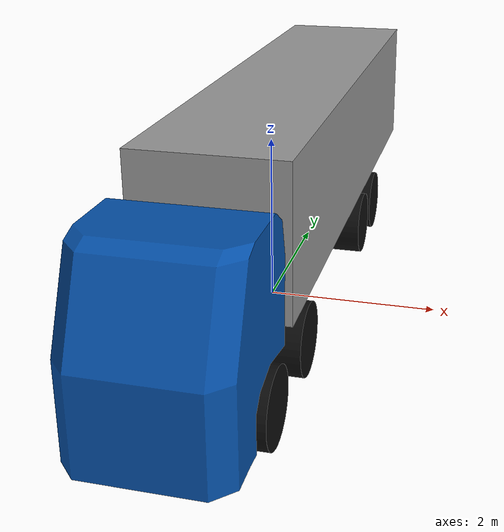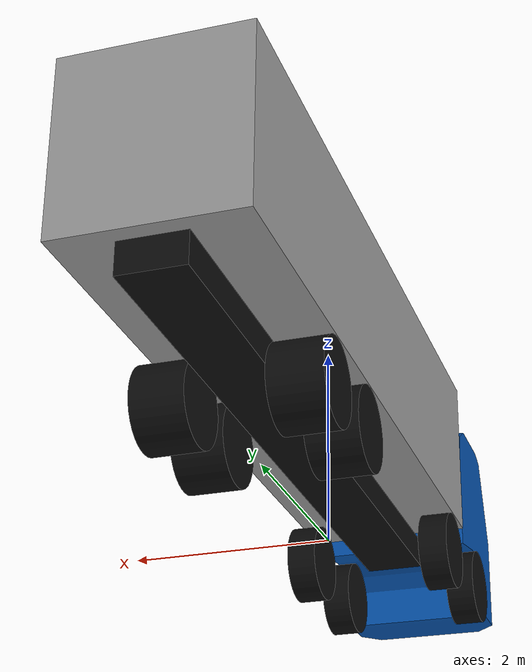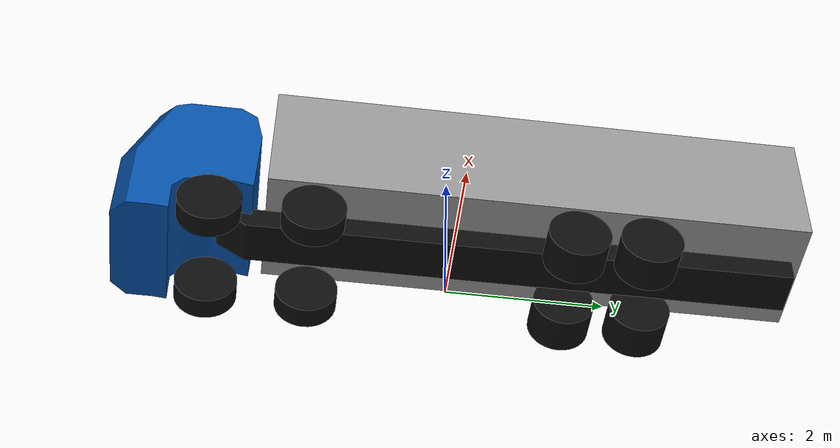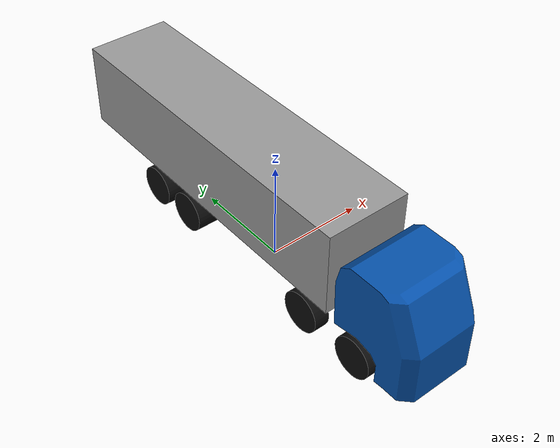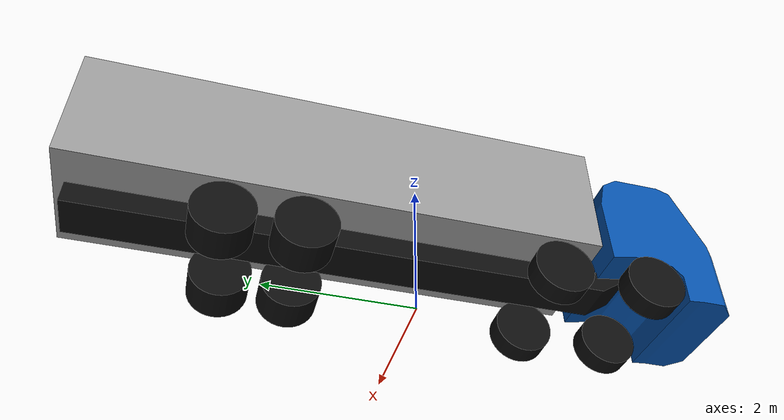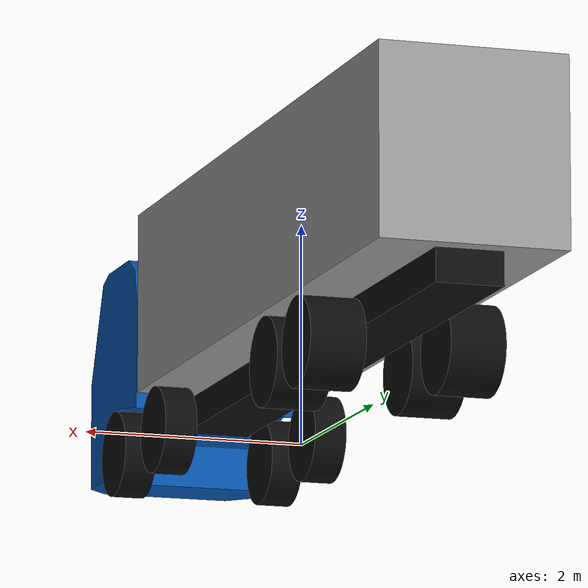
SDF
<?xml version="1.0"?>
<sdf version="1.7">
  <model name="truck">
    <static>false</static>

    <!-- Link Definition -->
    <link name="head">
      <!-- Visual Element -->
      <visual name="head_visual">
        <geometry>
          <mesh>
            <uri>model://truck/meshes/head.dae</uri>
            <scale>1 1 1</scale>
          </mesh>
        </geometry>
        <material>
          <ambient>0.02 0.32 0.67 1</ambient>
          <diffuse>0.02 0.32 0.67 1</diffuse>
          <emissive>0.1 0 0.1 1</emissive>
        </material>
      </visual>

      <!-- Collision Element -->
      <collision name="head_collision">
        <geometry>
          <mesh>
            <uri>model://truck/meshes/head.dae</uri>
            <scale>1 1 1</scale>
          </mesh>
        </geometry>
        <surface>
          <contact>
            <ode/>
          </contact>
          <bounce/>
          <friction>
            <ode/>
          </friction>
        </surface>
      </collision>

      <!-- Inertial Properties -->
      <inertial>
        <mass>10.0</mass>
        <inertia>
          <ixx>1.0</ixx>
          <ixy>0.0</ixy>
          <ixz>0.0</ixz>
          <iyy>1.0</iyy>
          <iyz>0.0</iyz>
          <izz>1.0</izz>
        </inertia>
      </inertial>
    </link>
    <link name="box">
      <!-- Visual Element -->
      <visual name="box_visual">
        <geometry>
          <mesh>
            <uri>model://truck/meshes/box.dae</uri>
            <scale>1 1 1</scale>
          </mesh>
        </geometry>
        <material>
            <ambient>0.6 0.6 0.6 1</ambient>
            <diffuse>0.6 0.6 0.6 1</diffuse>
            <emissive>0.1 0.1 0.1 1</emissive>
        </material>
      </visual>

      <!-- Collision Element -->
      <collision name="box_collision">
        <geometry>
          <mesh>
            <uri>model://truck/meshes/box.dae</uri>
            <scale>1 1 1</scale>
          </mesh>
        </geometry>
        <surface>
          <contact>
            <ode/>
          </contact>
          <bounce/>
          <friction>
            <ode/>
          </friction>
        </surface>
      </collision>

      <!-- Inertial Properties -->
      <inertial>
        <mass>10.0</mass>
        <inertia>
          <ixx>1.0</ixx>
          <ixy>0.0</ixy>
          <ixz>0.0</ixz>
          <iyy>1.0</iyy>
          <iyz>0.0</iyz>
          <izz>1.0</izz>
        </inertia>
      </inertial>
    </link>

    <link name="wheels">
      <!-- Visual Element -->
      <visual name="wheels_visual">
        <geometry>
          <mesh>
            <uri>model://truck/meshes/wheels.dae</uri>
            <scale>1 1 1</scale>
          </mesh>
        </geometry>
        <material>
          <ambient>0.05 0.05 0.05 1</ambient>
          <diffuse>0.05 0.05 0.05 1</diffuse>
          <emissive>0.1 0.1 0.1 1</emissive>
        </material>
      </visual>

      <!-- Collision Element -->
      <collision name="wheels_collision">
        <geometry>
          <mesh>
            <uri>model://truck/meshes/wheels.dae</uri>
            <scale>1 1 1</scale>
          </mesh>
        </geometry>
        <surface>
          <contact>
            <ode/>
          </contact>
          <bounce/>
          <friction>
            <ode/>
          </friction>
        </surface>
      </collision>

      <!-- Inertial Properties -->
      <inertial>
        <mass>10.0</mass>
        <inertia>
          <ixx>1.0</ixx>
          <ixy>0.0</ixy>
          <ixz>0.0</ixz>
          <iyy>1.0</iyy>
          <iyz>0.0</iyz>
          <izz>1.0</izz>
        </inertia>
      </inertial>
    </link>

    <link name="bottom">
      <!-- Visual Element -->
      <visual name="bottom_visual">
        <geometry>
          <mesh>
            <uri>model://truck/meshes/bottom.dae</uri>
            <scale>1 1 1</scale>
          </mesh>
        </geometry>
        <material>
          <ambient>0.05 0.05 0.05 1</ambient>
          <diffuse>0.05 0.05 0.05 1</diffuse>
          <emissive>0.1 0.1 0.1 1</emissive>
        </material>
      </visual>

      <!-- Collision Element -->
      <collision name="bottom_collision">
        <geometry>
          <mesh>
            <uri>model://truck/meshes/bottom.dae</uri>
            <scale>1 1 1</scale>
          </mesh>
        </geometry>
        <surface>
          <contact>
            <ode/>
          </contact>
          <bounce/>
          <friction>
            <ode/>
          </friction>
        </surface>
      </collision>

      <!-- Inertial Properties -->
      <inertial>
        <mass>10.0</mass>
        <inertia>
          <ixx>1.0</ixx>
          <ixy>0.0</ixy>
          <ixz>0.0</ixz>
          <iyy>1.0</iyy>
          <iyz>0.0</iyz>
          <izz>1.0</izz>
        </inertia>
      </inertial>
    </link>
    <!-- Joint Definitions -->
    <joint name="head_to_box" type="fixed">
      <parent>head</parent>
      <child>box</child>
    </joint>

    <joint name="head_to_wheels" type="fixed">
      <parent>head</parent>
      <child>wheels</child>
    </joint>

    <joint name="head_to_bottom" type="fixed">
      <parent>head</parent>
      <child>bottom</child>
    </joint>
  </model>
</sdf>
